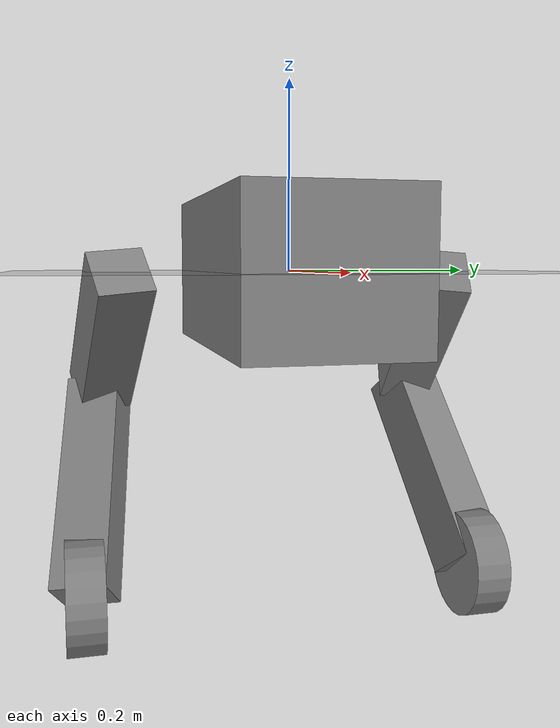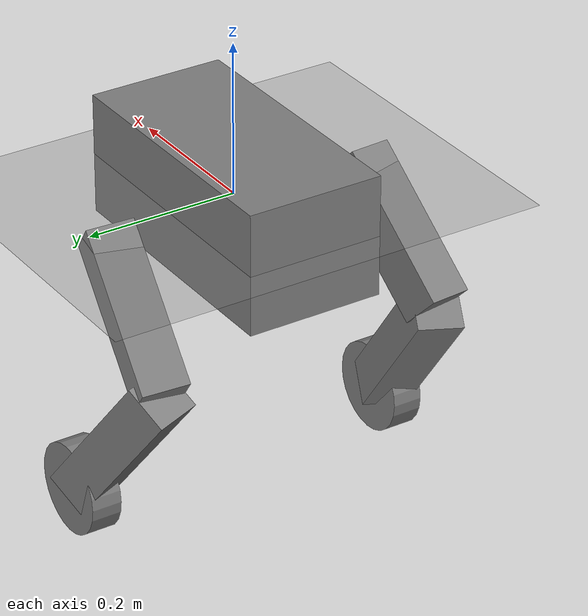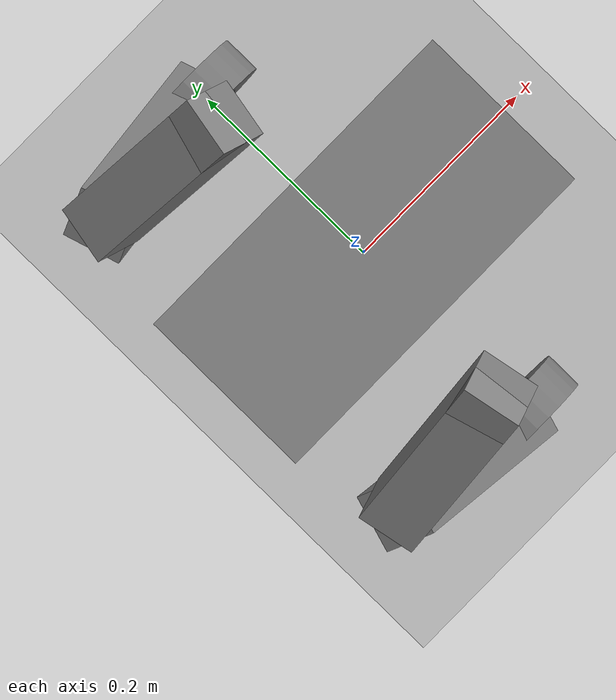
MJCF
<mujoco model="wheel_leg_train_parity">
  <compiler angle="radian"/>

  <option timestep="0.001" integrator="implicitfast"/>

  <worldbody>
    <geom name="ground" size="100 100 0.1" type="plane" friction="1.1 0.05 0.01"/>
    <body name="base_link">
      <inertial pos="0.00542458 0.00509953 0.121354" quat="0.0323763 0.775594 0.0256037 0.629881" mass="16.6222" diaginertia="0.618778 0.402274 0.362672"/>
      <joint name="robot_free" type="free"/>
      <geom size="0.18 0.09 0.08" type="box"/>
      <body name="left_leg_0_link" pos="1.4e-05 -0.1775 2.4e-05">
        <inertial pos="-0.0454529 0.00108647 -0.0496913" quat="0.65667 0.293737 0.328022 0.612294" mass="0.580171" diaginertia="0.00356547 0.00291994 0.000734809"/>
        <joint name="left_leg_0" pos="0 0 0" axis="0 1 0" range="-3.14 3.14" actuatorfrcrange="-40 40"/>
        <geom size="0.03 0.03 0.105362" pos="-0.07692 -0.00875 -0.07147" quat="0.401045 0.103538 -0.910188 8.07906e-10" type="box"/>
        <body name="left_leg_1_link" pos="-0.15384 -0.0175 -0.14294">
          <inertial pos="0.0723517 0.000210686 -0.0899056" quat="0.670041 -0.223606 -0.220718 0.672554" mass="0.306543" diaginertia="0.00308479 0.00303814 5.44098e-05"/>
          <joint name="left_leg_1" pos="0 0 0" axis="0 1 0" range="-3.14 3.14" actuatorfrcrange="-40 40"/>
          <geom size="0.03 0.03 0.125622" pos="0.0769085 -0.0127445 -0.098507" quat="0.328518 0.154407 0.931791 -2.92912e-09" type="box"/>
          <body name="left_wheel_link" pos="0.153817 -0.025489 -0.197014">
            <inertial pos="2.46372e-05 -0.00123786 -4.48514e-05" quat="0.660025 -0.253709 -0.253701 0.660026" mass="0.412753" diaginertia="0.00066759 0.000350034 0.000350028"/>
            <joint name="left_wheel" pos="0 0 0" axis="0 -1 0" range="-1000 1000" actuatorfrcrange="-47.2941 47.2941"/>
            <geom size="0.06 0.02" quat="0.707107 0.707107 0 0" type="cylinder"/>
          </body>
        </body>
      </body>
      <body name="right_leg_0_link" pos="1.4e-05 0.1775 2.4e-05">
        <inertial pos="-0.0454529 -0.00108626 -0.0496913" quat="0.612295 0.328022 0.293737 0.65667" mass="0.580171" diaginertia="0.00356545 0.00291992 0.000734809"/>
        <joint name="right_leg_0" pos="0 0 0" axis="0 1 0" range="-3.14 3.14" actuatorfrcrange="-40 40"/>
        <geom size="0.03 0.03 0.105362" pos="-0.07692 0.00875 -0.07147" quat="0.401045 -0.103538 -0.910188 -8.07906e-10" type="box"/>
        <body name="right_leg_1_link" pos="-0.15384 0.0175 -0.14294">
          <inertial pos="0.0723516 -0.000210484 -0.0899063" quat="0.672555 -0.220716 -0.223605 0.670041" mass="0.306545" diaginertia="0.00308485 0.00303819 5.44107e-05"/>
          <joint name="right_leg_1" pos="0 0 0" axis="0 1 0" range="-3.14 3.14" actuatorfrcrange="-40 40"/>
          <geom size="0.03 0.03 0.125641" pos="0.0768975 0.0127555 -0.0985385" quat="0.328418 -0.154564 0.9318 9.45756e-10" type="box"/>
          <body name="right_wheel_link" pos="0.153795 0.025511 -0.197077">
            <inertial pos="4.7208e-05 0.00121608 1.84836e-05" quat="0.624367 0.331904 0.331904 0.624377" mass="0.412753" diaginertia="0.00066759 0.000350033 0.000350028"/>
            <joint name="right_wheel" pos="0 0 0" axis="0 -1 0" range="-1000 1000" actuatorfrcrange="-47.2941 47.2941"/>
            <geom size="0.06 0.02" quat="0.707107 0.707107 0 0" type="cylinder"/>
          </body>
        </body>
      </body>
    </body>
  </worldbody>

  <actuator>
    <general name="left_leg_0_motor" joint="left_leg_0" ctrllimited="true" ctrlrange="-40 40" forcelimited="true" forcerange="-40 40"/>
    <general name="left_leg_1_motor" joint="left_leg_1" ctrllimited="true" ctrlrange="-40 40" forcelimited="true" forcerange="-40 40"/>
    <general name="left_wheel_motor" joint="left_wheel" ctrllimited="true" ctrlrange="-47.2941 47.2941" forcelimited="true" forcerange="-47.2941 47.2941"/>
    <general name="right_leg_0_motor" joint="right_leg_0" ctrllimited="true" ctrlrange="-40 40" forcelimited="true" forcerange="-40 40"/>
    <general name="right_leg_1_motor" joint="right_leg_1" ctrllimited="true" ctrlrange="-40 40" forcelimited="true" forcerange="-40 40"/>
    <general name="right_wheel_motor" joint="right_wheel" ctrllimited="true" ctrlrange="-47.2941 47.2941" forcelimited="true" forcerange="-47.2941 47.2941"/>
  </actuator>
</mujoco>
